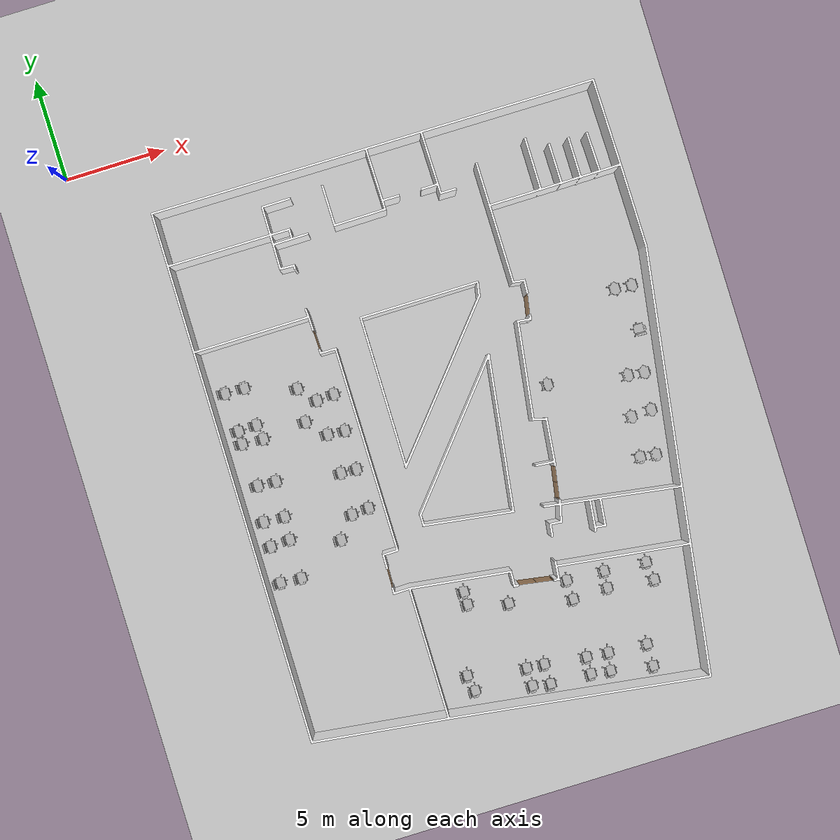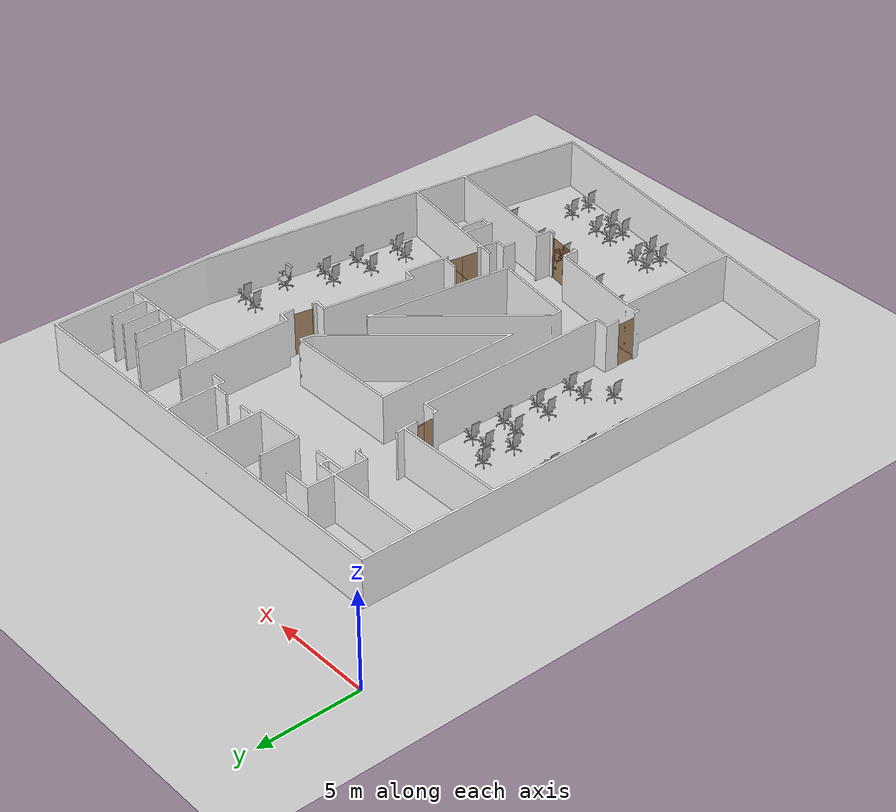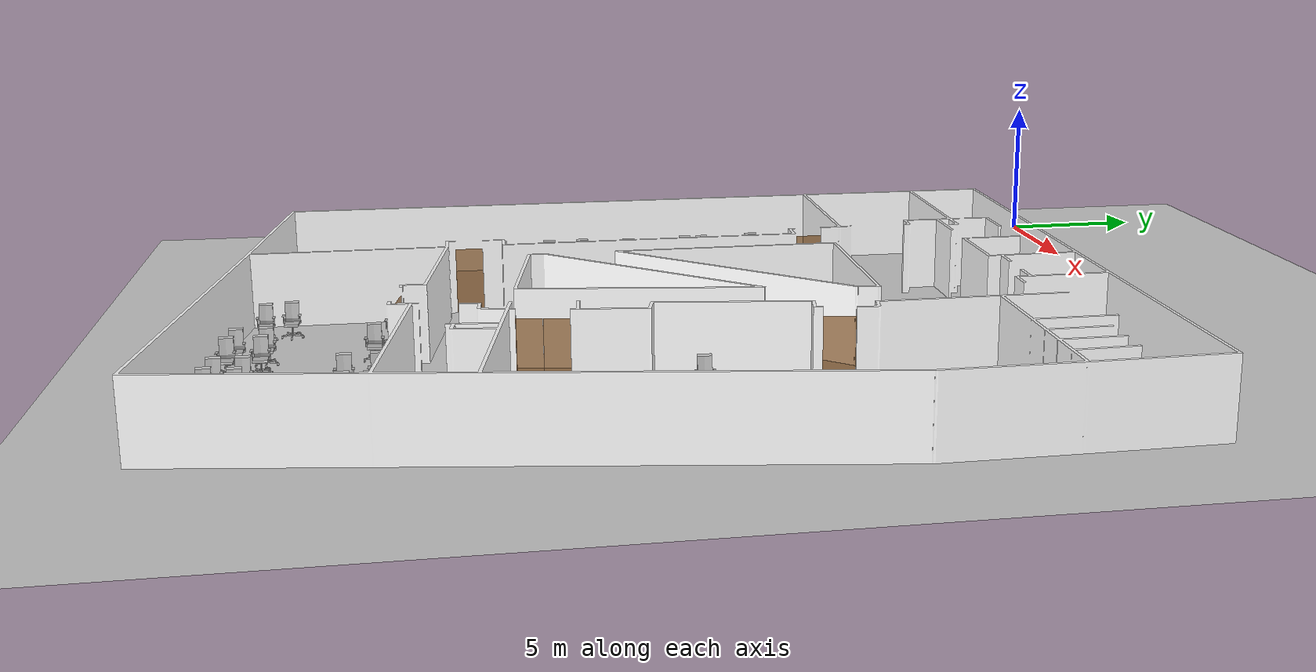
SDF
<sdf version="1.7">
 <world name="sim_world">
  <physics name="10ms" type="ode">
   <max_step_size>0.01</max_step_size>
   <real_time_factor>1.0</real_time_factor>
  </physics>
  <plugin filename="libgz-sim-physics-system.so" name="gz::sim::systems::Physics"/>
  <plugin filename="libgz-sim-user-commands-system.so" name="gz::sim::systems::UserCommands"/>
  <plugin filename="libgz-sim-scene-broadcaster-system.so" name="gz::sim::systems::SceneBroadcaster"/>
  <plugin filename="libdoor.so" name="door"/>
  <plugin filename="liblift.so" name="lift"/>
  <plugin filename="gz-sim-sensors-system" name="gz::sim::systems::Sensors">
   <render_engine>ogre2</render_engine>
  </plugin>
  <plugin filename="gz-sim-imu-system" name="gz::sim::systems::Imu"/>
  <scene><ambient>1 1 1</ambient><background>0.8 0.8 0.8</background><grid>false</grid></scene>
  <light type="directional" name="sun">
   <pose>0 0 10 0 0 0</pose>
   <diffuse>1 1 1 1</diffuse>
   <specular>0.2 0.2 0.2 1</specular>
   <attenuation>
    <range>1000</range>
    <constant>0.09</constant>
    <linear>0.001</linear>
    <quadratic>0.001</quadratic>
   </attenuation>
   <direction>-0.5 0.1 -0.9</direction>
  </light>
  <include>
   <name>OpenRobotics/OfficeChairGrey</name>
   <uri>model://OfficeChairGrey</uri>
   <pose>24.45538305262589 -14.953272461288782 0.0 0 0 3.1059</pose>
   <static>True</static>
  </include>
  <include>
   <name>OpenRobotics/OfficeChairGrey_2</name>
   <uri>model://OfficeChairGrey</uri>
   <pose>19.54662941840125 -16.343971186480488 0.0 0 0 1.5708</pose>
   <static>True</static>
  </include>
  <include>
   <name>OpenRobotics/OfficeChairGrey_3</name>
   <uri>model://OfficeChairGrey</uri>
   <pose>24.209213492193538 -17.14425904217775 0.0 0 0 1.5708</pose>
   <static>True</static>
  </include>
  <include>
   <name>OpenRobotics/OfficeChairGrey_4</name>
   <uri>model://OfficeChairGrey</uri>
   <pose>23.987626446452843 -18.966034334107675 0.0 0 0 1.5708</pose>
   <static>True</static>
  </include>
  <include>
   <name>OpenRobotics/OfficeChairGrey_5</name>
   <uri>model://OfficeChairGrey</uri>
   <pose>23.3968281117531 -17.045799828342705 0.0 0 0 1.5708</pose>
   <static>True</static>
  </include>
  <include>
   <name>OpenRobotics/OfficeChairGrey_6</name>
   <uri>model://OfficeChairGrey</uri>
   <pose>22.978279586652835 -19.01524241518046 0.0 0 0 1.5708</pose>
   <static>True</static>
  </include>
  <include>
   <name>OpenRobotics/OfficeChairGrey_7</name>
   <uri>model://OfficeChairGrey</uri>
   <pose>22.810162739243196 -21.00896615488352 0.0 0 0 1.5708</pose>
   <static>True</static>
  </include>
  <include>
   <name>OpenRobotics/OfficeChairGrey_8</name>
   <uri>model://OfficeChairGrey</uri>
   <pose>23.579022861621883 -21.109276591366097 0.0 0 0 1.5708</pose>
   <static>True</static>
  </include>
  <include>
   <name>OpenRobotics/OfficeChairGrey_9</name>
   <uri>model://OfficeChairGrey</uri>
   <pose>24.013586615207775 -12.869183225372444 0.0 0 0 1.5708</pose>
   <static>True</static>
  </include>
  <include>
   <name>OpenRobotics/OfficeChairGrey_10</name>
   <uri>model://OfficeChairGrey</uri>
   <pose>24.849262959655544 -12.936042499131002 0.0 0 0 1.5708</pose>
   <static>True</static>
  </include>
  <include>
   <name>OpenRobotics/OfficeChairGrey_11</name>
   <uri>model://OfficeChairGrey</uri>
   <pose>11.711996863906702 -28.68073416808468 0.0 0 0 1.5708</pose>
   <static>True</static>
  </include>
  <include>
   <name>OpenRobotics/OfficeChairGrey_12</name>
   <uri>model://OfficeChairGrey</uri>
   <pose>11.86241946694109 -29.483045453187383 0.0 0 0 1.5708</pose>
   <static>True</static>
  </include>
  <include>
   <name>OpenRobotics/OfficeChairGrey_13</name>
   <uri>model://OfficeChairGrey</uri>
   <pose>12.731546974112874 -24.752913278604897 0.0 0 0 1.5708</pose>
   <static>True</static>
  </include>
  <include>
   <name>OpenRobotics/OfficeChairGrey_14</name>
   <uri>model://OfficeChairGrey</uri>
   <pose>12.731546974112874 -25.388054853466468 0.0 0 0 1.5708</pose>
   <static>True</static>
  </include>
  <include>
   <name>OpenRobotics/OfficeChairGrey_15</name>
   <uri>model://OfficeChairGrey</uri>
   <pose>14.653675754214854 -25.922929043534936 0.0 0 0 1.5708</pose>
   <static>True</static>
  </include>
  <include>
   <name>OpenRobotics/OfficeChairGrey_16</name>
   <uri>model://OfficeChairGrey</uri>
   <pose>14.570112424939023 -29.16545313991186 0.0 0 0 1.5708</pose>
   <static>True</static>
  </include>
  <include>
   <name>OpenRobotics/OfficeChairGrey_17</name>
   <uri>model://OfficeChairGrey</uri>
   <pose>14.586816480456294 -30.068031809807668 0.0 0 0 1.5708</pose>
   <static>True</static>
  </include>
  <include>
   <name>OpenRobotics/OfficeChairGrey_18</name>
   <uri>model://OfficeChairGrey</uri>
   <pose>15.439239932110809 -29.23231241367042 0.0 0 0 1.5708</pose>
   <static>True</static>
  </include>
  <include>
   <name>OpenRobotics/OfficeChairGrey_19</name>
   <uri>model://OfficeChairGrey</uri>
   <pose>15.45594398762808 -30.235158468359323 0.0 0 0 1.5708</pose>
   <static>True</static>
  </include>
  <include>
   <name>OpenRobotics/OfficeChairGrey_20</name>
   <uri>model://OfficeChairGrey</uri>
   <pose>17.495044208040426 -29.499749508704657 0.0 0 0 1.5708</pose>
   <static>True</static>
  </include>
  <include>
   <name>OpenRobotics/OfficeChairGrey_21</name>
   <uri>model://OfficeChairGrey</uri>
   <pose>17.461636097005886 -30.335468904841903 0.0 0 0 1.5708</pose>
   <static>True</static>
  </include>
  <include>
   <name>OpenRobotics/OfficeChairGrey_22</name>
   <uri>model://OfficeChairGrey</uri>
   <pose>18.56474953648789 -29.600016893497756 0.0 0 0 1.5708</pose>
   <static>True</static>
  </include>
  <include>
   <name>OpenRobotics/OfficeChairGrey_23</name>
   <uri>model://OfficeChairGrey</uri>
   <pose>18.414326933453502 -30.469144400669542 0.0 0 0 1.5708</pose>
   <static>True</static>
  </include>
  <include>
   <name>OpenRobotics/OfficeChairGrey_24</name>
   <uri>model://OfficeChairGrey</uri>
   <pose>19.51748342462498 -25.772506440500546 0.0 0 0 1.5708</pose>
   <static>True</static>
  </include>
  <include>
   <name>OpenRobotics/OfficeChairGrey_25</name>
   <uri>model://OfficeChairGrey</uri>
   <pose>19.43392009534915 -26.591478729431046 0.0 0 0 1.5708</pose>
   <static>True</static>
  </include>
  <include>
   <name>OpenRobotics/OfficeChairGrey_26</name>
   <uri>model://OfficeChairGrey</uri>
   <pose>17.662213918281562 -25.672196004017973 0.0 0 0 1.5708</pose>
   <static>True</static>
  </include>
  <include>
   <name>OpenRobotics/OfficeChairGrey_27</name>
   <uri>model://OfficeChairGrey</uri>
   <pose>17.6956220293161 -26.641633947672332 0.0 0 0 1.5708</pose>
   <static>True</static>
  </include>
  <include>
   <name>OpenRobotics/OfficeChairGrey_28</name>
   <uri>model://OfficeChairGrey</uri>
   <pose>20.470174261072597 -29.75043949653214 0.0 0 0 1.5708</pose>
   <static>True</static>
  </include>
  <include>
   <name>OpenRobotics/OfficeChairGrey_29</name>
   <uri>model://OfficeChairGrey</uri>
   <pose>20.453470205555327 -30.853595987703624 0.0 0 0 1.5708</pose>
   <static>True</static>
  </include>
  <include>
   <name>OpenRobotics/OfficeChairGrey_30</name>
   <uri>model://OfficeChairGrey</uri>
   <pose>21.723753355278465 -26.87561987998255 0.0 0 0 1.5708</pose>
   <static>True</static>
  </include>
  <include>
   <name>OpenRobotics/OfficeChairGrey_31</name>
   <uri>model://OfficeChairGrey</uri>
   <pose>21.590034807761345 -25.956337154569475 0.0 0 0 1.5708</pose>
   <static>True</static>
  </include>
  <include>
   <name>OpenRobotics/OfficeChairGrey_32</name>
   <uri>model://OfficeChairGrey</uri>
   <pose>4.458045497084684 -19.92255677091879 0.0 0 0 1.5708</pose>
   <static>True</static>
  </include>
  <include>
   <name>OpenRobotics/OfficeChairGrey_33</name>
   <uri>model://OfficeChairGrey</uri>
   <pose>5.427483440739047 -19.8724015526775 0.0 0 0 1.5708</pose>
   <static>True</static>
  </include>
  <include>
   <name>OpenRobotics/OfficeChairGrey_34</name>
   <uri>model://OfficeChairGrey</uri>
   <pose>4.391186223326125 -21.744375114538187 0.0 0 0 1.5708</pose>
   <static>True</static>
  </include>
  <include>
   <name>OpenRobotics/OfficeChairGrey_35</name>
   <uri>model://OfficeChairGrey</uri>
   <pose>5.427483440739047 -21.811234388296747 0.0 0 0 1.5708</pose>
   <static>True</static>
  </include>
  <include>
   <name>OpenRobotics/OfficeChairGrey_36</name>
   <uri>model://OfficeChairGrey</uri>
   <pose>7.800880029944188 -20.607810512332165 0.0 0 0 1.5708</pose>
   <static>True</static>
  </include>
  <include>
   <name>OpenRobotics/OfficeChairGrey_37</name>
   <uri>model://OfficeChairGrey</uri>
   <pose>8.670007537115973 -19.588260402125993 0.0 0 0 1.5708</pose>
   <static>True</static>
  </include>
  <include>
   <name>OpenRobotics/OfficeChairGrey_38</name>
   <uri>model://OfficeChairGrey</uri>
   <pose>9.52243098877049 -19.521401128367433 0.0 0 0 1.5708</pose>
   <static>True</static>
  </include>
  <include>
   <name>OpenRobotics/OfficeChairGrey_39</name>
   <uri>model://OfficeChairGrey</uri>
   <pose>8.736866810874531 -17.51570901898963 0.0 0 0 1.5708</pose>
   <static>True</static>
  </include>
  <include>
   <name>OpenRobotics/OfficeChairGrey_40</name>
   <uri>model://OfficeChairGrey</uri>
   <pose>9.505726933253218 -17.549160181713646 0.0 0 0 1.5708</pose>
   <static>True</static>
  </include>
  <include>
   <name>OpenRobotics/OfficeChairGrey_41</name>
   <uri>model://OfficeChairGrey</uri>
   <pose>4.474749552601954 -18.685724783919664 0.0 0 0 1.5708</pose>
   <static>True</static>
  </include>
  <include>
   <name>OpenRobotics/OfficeChairGrey_42</name>
   <uri>model://OfficeChairGrey</uri>
   <pose>5.511046770014875 -18.735836950471477 0.0 0 0 1.5708</pose>
   <static>True</static>
  </include>
  <include>
   <name>OpenRobotics/OfficeChairGrey_43</name>
   <uri>model://OfficeChairGrey</uri>
   <pose>5.611314154807975 -16.980877880610635 0.0 0 0 1.5708</pose>
   <static>True</static>
  </include>
  <include>
   <name>OpenRobotics/OfficeChairGrey_44</name>
   <uri>model://OfficeChairGrey</uri>
   <pose>4.708778536601648 -16.930722662369345 0.0 0 0 1.5708</pose>
   <static>True</static>
  </include>
  <include>
   <name>OpenRobotics/OfficeChairGrey_45</name>
   <uri>model://OfficeChairGrey</uri>
   <pose>4.575059989084531 -14.774607949957153 0.0 0 0 1.5708</pose>
   <static>True</static>
  </include>
  <include>
   <name>OpenRobotics/OfficeChairGrey_46</name>
   <uri>model://OfficeChairGrey</uri>
   <pose>5.628018210325245 -14.84146722371571 0.0 0 0 1.5708</pose>
   <static>True</static>
  </include>
  <include>
   <name>OpenRobotics/OfficeChairGrey_47</name>
   <uri>model://OfficeChairGrey</uri>
   <pose>4.591764044601801 -14.139466375095584 0.0 0 0 1.5708</pose>
   <static>True</static>
  </include>
  <include>
   <name>OpenRobotics/OfficeChairGrey_48</name>
   <uri>model://OfficeChairGrey</uri>
   <pose>5.511046770014875 -14.106058264061042 0.0 0 0 1.5708</pose>
   <static>True</static>
  </include>
  <include>
   <name>OpenRobotics/OfficeChairGrey_49</name>
   <uri>model://OfficeChairGrey</uri>
   <pose>8.653303481598703 -13.821917113509537 0.0 0 0 1.5708</pose>
   <static>True</static>
  </include>
  <include>
   <name>OpenRobotics/OfficeChairGrey_50</name>
   <uri>model://OfficeChairGrey</uri>
   <pose>9.52243098877049 -13.771761895268249 0.0 0 0 1.5708</pose>
   <static>True</static>
  </include>
  <include>
   <name>OpenRobotics/OfficeChairGrey_51</name>
   <uri>model://OfficeChairGrey</uri>
   <pose>8.670007537115973 -15.543468072335838 0.0 0 0 1.5708</pose>
   <static>True</static>
  </include>
  <include>
   <name>OpenRobotics/OfficeChairGrey_52</name>
   <uri>model://OfficeChairGrey</uri>
   <pose>9.52243098877049 -15.6103273460944 0.0 0 0 1.5708</pose>
   <static>True</static>
  </include>
  <include>
   <name>OpenRobotics/OfficeChairGrey_53</name>
   <uri>model://OfficeChairGrey</uri>
   <pose>7.817584085461458 -14.657593457957304 0.0 0 0 1.5708</pose>
   <static>True</static>
  </include>
  <include>
   <name>OpenRobotics/OfficeChairGrey_54</name>
   <uri>model://OfficeChairGrey</uri>
   <pose>7.917894521944034 -13.002901772889562 0.0 0 0 1.5708</pose>
   <static>True</static>
  </include>
  <include>
   <name>OpenRobotics/OfficeChairGrey_55</name>
   <uri>model://OfficeChairGrey</uri>
   <pose>5.459772207847172 -12.22069562677285 0.0 0 0 1.5708</pose>
   <static>True</static>
  </include>
  <include>
   <name>OpenRobotics/OfficeChairGrey_56</name>
   <uri>model://OfficeChairGrey</uri>
   <pose>4.4970503277513 -12.202872227329165 0.0 0 0 1.5708</pose>
   <static>True</static>
  </include>
  <model name="door1">
   <pose>19.537760770368884 -12.433629282928571 0.0 0 0 -1.7520117621450364</pose>
   <link name="right">
    <pose>0 0 1.11 0 0 0</pose>
    <visual name="right_visual">
     <geometry><box><size>1.0587363183689904 0.03 2.2</size></box></geometry>
     <material>
      <ambient>0.5 0.25 0 0.6</ambient>
      <diffuse>0.5 0.25 0 0.6</diffuse>
      <pbr><metal><metalness>0.0</metalness></metal></pbr>
     </material>
    </visual>
    <collision name="right_collision">
     <geometry><box><size>1.0587363183689904 0.03 2.2</size></box></geometry>
     <surface><contact><collide_bitmask>0x02</collide_bitmask></contact></surface>
    </collision>
    <inertial>
     <mass>50.0</mass>
     <inertia><ixx>20.17041666666667</ixx><iyy>24.83717746597302</iyy><izz>4.67426079930635</izz></inertia>
    </inertial>
   </link>
   <joint name="right_joint" type="revolute">
    <parent>world</parent>
    <child>right</child>
    <axis><xyz>0 0 1</xyz><limit><lower>0</lower><upper>1.57</upper></limit></axis>
    <pose>0.5343681591844952 0 0 0 0 0</pose>
   </joint>
   <plugin name="register_component" filename="libregister_component.so">
    <component name="Door">
     <v_max_door>0.5</v_max_door>
     <a_max_door>0.3</a_max_door>
     <a_nom_door>0.15</a_nom_door>
     <dx_min_door>0.01</dx_min_door>
     <f_max_door>500.0</f_max_door>
     <ros_interface>true</ros_interface>
     <door name="door1" type="SwingDoor" left_joint_name="empty_joint" right_joint_name="right_joint"/>
    </component>
   </plugin>
  </model>
  <model name="door6">
   <pose>9.453978802501261 -22.932343433980343 0.0 0 0 -1.5984697387950686</pose>
   <link name="right">
    <pose>0 0 1.11 0 0 0</pose>
    <visual name="right_visual">
     <geometry><box><size>0.9982260847380109 0.03 2.2</size></box></geometry>
     <material>
      <ambient>0.5 0.25 0 0.6</ambient>
      <diffuse>0.5 0.25 0 0.6</diffuse>
      <pbr><metal><metalness>0.0</metalness></metal></pbr>
     </material>
    </visual>
    <collision name="right_collision">
     <geometry><box><size>0.9982260847380109 0.03 2.2</size></box></geometry>
     <surface><contact><collide_bitmask>0x02</collide_bitmask></contact></surface>
    </collision>
    <inertial>
     <mass>50.0</mass>
     <inertia><ixx>20.17041666666667</ixx><iyy>24.318563817714082</iyy><izz>4.155647151047411</izz></inertia>
    </inertial>
   </link>
   <joint name="right_joint" type="revolute">
    <parent>world</parent>
    <child>right</child>
    <axis><xyz>0 0 -1</xyz><limit><lower>0</lower><upper>1.57</upper></limit></axis>
    <pose>0.5041130423690054 0 0 0 0 0</pose>
   </joint>
   <plugin name="register_component" filename="libregister_component.so">
    <component name="Door">
     <v_max_door>0.5</v_max_door>
     <a_max_door>0.3</a_max_door>
     <a_nom_door>0.15</a_nom_door>
     <dx_min_door>0.01</dx_min_door>
     <f_max_door>500.0</f_max_door>
     <ros_interface>true</ros_interface>
     <door name="door6" type="SwingDoor" left_joint_name="empty_joint" right_joint_name="right_joint"/>
    </component>
   </plugin>
  </model>
  <model name="door7">
   <pose>9.426038256030365 -11.111920890124557 0.0 0 0 -1.5464839528938505</pose>
   <link name="right">
    <pose>0 0 1.11 0 0 0</pose>
    <visual name="right_visual">
     <geometry><box><size>0.9817304442703529 0.03 2.2</size></box></geometry>
     <material>
      <ambient>0.5 0.25 0 0.6</ambient>
      <diffuse>0.5 0.25 0 0.6</diffuse>
      <pbr><metal><metalness>0.0</metalness></metal></pbr>
     </material>
    </visual>
    <collision name="right_collision">
     <geometry><box><size>0.9817304442703529 0.03 2.2</size></box></geometry>
     <surface><contact><collide_bitmask>0x02</collide_bitmask></contact></surface>
    </collision>
    <inertial>
     <mass>50.0</mass>
     <inertia><ixx>20.17041666666667</ixx><iyy>24.18247777169694</iyy><izz>4.019561105030269</izz></inertia>
    </inertial>
   </link>
   <joint name="right_joint" type="revolute">
    <parent>world</parent>
    <child>right</child>
    <axis><xyz>0 0 -1</xyz><limit><lower>0</lower><upper>1.57</upper></limit></axis>
    <pose>0.4958652221351765 0 0 0 0 0</pose>
   </joint>
   <plugin name="register_component" filename="libregister_component.so">
    <component name="Door">
     <v_max_door>0.5</v_max_door>
     <a_max_door>0.3</a_max_door>
     <a_nom_door>0.15</a_nom_door>
     <dx_min_door>0.01</dx_min_door>
     <f_max_door>500.0</f_max_door>
     <ros_interface>true</ros_interface>
     <door name="door7" type="SwingDoor" left_joint_name="empty_joint" right_joint_name="right_joint"/>
    </component>
   </plugin>
  </model>
  <model name="door_large1">
   <pose>18.366001412015006 -20.919138804788716 0.0 0 0 1.4035876727675292</pose>
   <link name="right">
    <pose>0.42002604624791734 0 1.11 0 0 0</pose>
    <visual name="right_visual">
     <geometry><box><size>0.8300520924958347 0.03 2.2</size></box></geometry>
     <material>
      <ambient>0.5 0.25 0 0.6</ambient>
      <diffuse>0.5 0.25 0 0.6</diffuse>
      <pbr><metal><metalness>0.0</metalness></metal></pbr>
     </material>
    </visual>
    <collision name="right_collision">
     <geometry><box><size>0.8300520924958347 0.03 2.2</size></box></geometry>
     <surface><contact><collide_bitmask>0x02</collide_bitmask></contact></surface>
    </collision>
    <inertial>
     <mass>50.0</mass>
     <inertia><ixx>20.17041666666667</ixx><iyy>23.037443651069648</iyy><izz>2.874526984402974</izz></inertia>
    </inertial>
   </link>
   <joint name="right_joint" type="revolute">
    <parent>world</parent>
    <child>right</child>
    <axis><xyz>0 0 -1</xyz><limit><lower>0</lower><upper>1.3955555555555557</upper></limit></axis>
    <pose>0.42002604624791734 0 0 0 0 0</pose>
   </joint>
   <link name="left">
    <pose>-0.42002604624791734 0 1.11 0 0 0</pose>
    <visual name="left_visual">
     <geometry><box><size>0.8300520924958347 0.03 2.2</size></box></geometry>
     <material>
      <ambient>0.5 0.25 0 0.6</ambient>
      <diffuse>0.5 0.25 0 0.6</diffuse>
      <pbr><metal><metalness>0.0</metalness></metal></pbr>
     </material>
    </visual>
    <collision name="left_collision">
     <geometry><box><size>0.8300520924958347 0.03 2.2</size></box></geometry>
     <surface><contact><collide_bitmask>0x02</collide_bitmask></contact></surface>
    </collision>
    <inertial>
     <mass>50.0</mass>
     <inertia><ixx>20.17041666666667</ixx><iyy>23.037443651069648</iyy><izz>2.874526984402974</izz></inertia>
    </inertial>
   </link>
   <joint name="left_joint" type="revolute">
    <parent>world</parent>
    <child>left</child>
    <axis><xyz>0 0 -1</xyz><limit><lower>-1.3955555555555557</lower><upper>0</upper></limit></axis>
    <pose>-0.42002604624791734 0 0 0 0 0</pose>
   </joint>
   <plugin name="register_component" filename="libregister_component.so">
    <component name="Door">
     <v_max_door>0.5</v_max_door>
     <a_max_door>0.3</a_max_door>
     <a_nom_door>0.15</a_nom_door>
     <dx_min_door>0.01</dx_min_door>
     <f_max_door>500.0</f_max_door>
     <ros_interface>true</ros_interface>
     <door name="door_large1" type="DoubleSwingDoor" left_joint_name="left_joint" right_joint_name="right_joint"/>
    </component>
   </plugin>
  </model>
  <model name="door_large2">
   <pose>16.03249221311077 -25.155317420151096 0.0 0 0 2.9807199368187547</pose>
   <link name="right">
    <pose>0.4386345483646873 0 1.11 0 0 0</pose>
    <visual name="right_visual">
     <geometry><box><size>0.8672690967293746 0.03 2.2</size></box></geometry>
     <material>
      <ambient>0.5 0.25 0 0.6</ambient>
      <diffuse>0.5 0.25 0 0.6</diffuse>
      <pbr><metal><metalness>0.0</metalness></metal></pbr>
     </material>
    </visual>
    <collision name="right_collision">
     <geometry><box><size>0.8672690967293746 0.03 2.2</size></box></geometry>
     <surface><contact><collide_bitmask>0x02</collide_bitmask></contact></surface>
    </collision>
    <inertial>
     <mass>50.0</mass>
     <inertia><ixx>20.17041666666667</ixx><iyy>23.300648692257443</iyy><izz>3.1377320255907724</izz></inertia>
    </inertial>
   </link>
   <joint name="right_joint" type="revolute">
    <parent>world</parent>
    <child>right</child>
    <axis><xyz>0 0 1</xyz><limit><lower>0</lower><upper>1.57</upper></limit></axis>
    <pose>0.4386345483646873 0 0 0 0 0</pose>
   </joint>
   <link name="left">
    <pose>-0.4386345483646873 0 1.11 0 0 0</pose>
    <visual name="left_visual">
     <geometry><box><size>0.8672690967293746 0.03 2.2</size></box></geometry>
     <material>
      <ambient>0.5 0.25 0 0.6</ambient>
      <diffuse>0.5 0.25 0 0.6</diffuse>
      <pbr><metal><metalness>0.0</metalness></metal></pbr>
     </material>
    </visual>
    <collision name="left_collision">
     <geometry><box><size>0.8672690967293746 0.03 2.2</size></box></geometry>
     <surface><contact><collide_bitmask>0x02</collide_bitmask></contact></surface>
    </collision>
    <inertial>
     <mass>50.0</mass>
     <inertia><ixx>20.17041666666667</ixx><iyy>23.300648692257443</iyy><izz>3.1377320255907724</izz></inertia>
    </inertial>
   </link>
   <joint name="left_joint" type="revolute">
    <parent>world</parent>
    <child>left</child>
    <axis><xyz>0 0 1</xyz><limit><lower>-1.57</lower><upper>0</upper></limit></axis>
    <pose>-0.4386345483646873 0 0 0 0 0</pose>
   </joint>
   <plugin name="register_component" filename="libregister_component.so">
    <component name="Door">
     <v_max_door>0.5</v_max_door>
     <a_max_door>0.3</a_max_door>
     <a_nom_door>0.15</a_nom_door>
     <dx_min_door>0.01</dx_min_door>
     <f_max_door>500.0</f_max_door>
     <ros_interface>true</ros_interface>
     <door name="door_large2" type="DoubleSwingDoor" left_joint_name="left_joint" right_joint_name="right_joint"/>
    </component>
   </plugin>
  </model>
  <include><name>test_map_E2A_L1</name><uri>model://test_map_E2A_L1</uri></include>
  <include><uri>https://fuel.gazebosim.org/1.0/OpenRobotics/models/Ground Plane</uri></include>
  <rmf_charger_waypoints name="charger_waypoints">
   <rmf_vertex name="tb3_charger" x="11.14199249522459" y="-5.136712330008006" level="L1"/>
   <rmf_vertex name="studio4_charger" x="6.779521748779958" y="-11.137429016139976" level="L1"/>
   <rmf_vertex name="studio2_charger" x="22.73211002622049" y="-9.414155989734574" level="L1"/>
   <rmf_vertex name="studio3_charger" x="11.280920297168485" y="-27.00727194640475" level="L1"/>
  </rmf_charger_waypoints>
 </world>
</sdf>

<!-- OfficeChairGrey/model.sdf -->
<sdf version="1.6">
  <model name="OfficeChairGrey">
   <static>true</static>
    <link name="body">
      <pose>0 0 0 0 0 0</pose>

      <visual name="visual">
        <geometry>
          <mesh>
            <uri>model://OfficeChairGrey/meshes/OfficeChairGrey.obj</uri>
          </mesh>
        </geometry>
      </visual>

      <collision name="collision">
        <geometry>
          <mesh>
            <uri>model://OfficeChairGrey/meshes/OfficeChairGrey_Col.obj</uri>
          </mesh>
        </geometry>
      </collision>

    </link>
  </model>
</sdf>

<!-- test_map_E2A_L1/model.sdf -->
<sdf version="1.7">
  <model name="test_map_E2A_L1">
    <static>true</static>
    <link name="wall_1">
      <visual name="wall_1">
        <geometry>
          <mesh>
            <uri>model://test_map_E2A_L1/meshes/wall_1.obj</uri>
          </mesh>
        </geometry>
        <transparency>0.0</transparency>
        <material>
          <diffuse>1.0 1.0 1.0</diffuse>
          <specular>0.1 0.1 0.1</specular>
          <pbr>
            <metal>
              <metalness>0.0</metalness>
              <albedo_map>model://test_map_E2A_L1/meshes/default.png</albedo_map>
            </metal>
          </pbr>
          <script>
            <uri>model://test_map_E2A_L1/meshes/</uri>
            <name>wall_1_Diffuse</name>
          </script>
        </material>
      </visual>
      <collision name="collision">
        <geometry>
          <mesh>
            <uri>model://test_map_E2A_L1/meshes/wall_1.obj</uri>
          </mesh>
        </geometry>
        <surface>
          <contact>
            <collide_bitmask>0x01</collide_bitmask>
          </contact>
        </surface>
      </collision>
      <pose>3.59995916796716 -31.845481797859218 0 0 0 0</pose>
    </link>
    <link name="wall_2">
      <visual name="wall_2">
        <geometry>
          <mesh>
            <uri>model://test_map_E2A_L1/meshes/wall_2.obj</uri>
          </mesh>
        </geometry>
        <transparency>0.0</transparency>
        <material>
          <diffuse>1.0 1.0 1.0</diffuse>
          <specular>0.1 0.1 0.1</specular>
          <pbr>
            <metal>
              <metalness>0.0</metalness>
              <albedo_map>model://test_map_E2A_L1/meshes/default.png</albedo_map>
            </metal>
          </pbr>
          <script>
            <uri>model://test_map_E2A_L1/meshes/</uri>
            <name>wall_2_Diffuse</name>
          </script>
        </material>
      </visual>
      <collision name="collision">
        <geometry>
          <mesh>
            <uri>model://test_map_E2A_L1/meshes/wall_2.obj</uri>
          </mesh>
        </geometry>
        <surface>
          <contact>
            <collide_bitmask>0x01</collide_bitmask>
          </contact>
        </surface>
      </collision>
      <pose>11.649383889403657 -21.668722334704658 0 0 0 0</pose>
    </link>
  </model>
</sdf>
